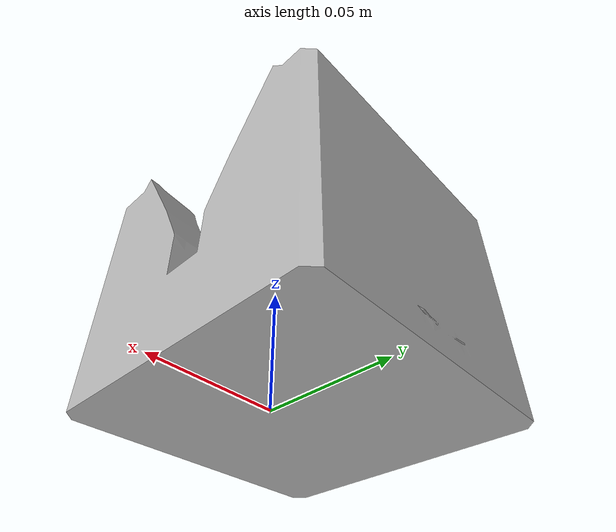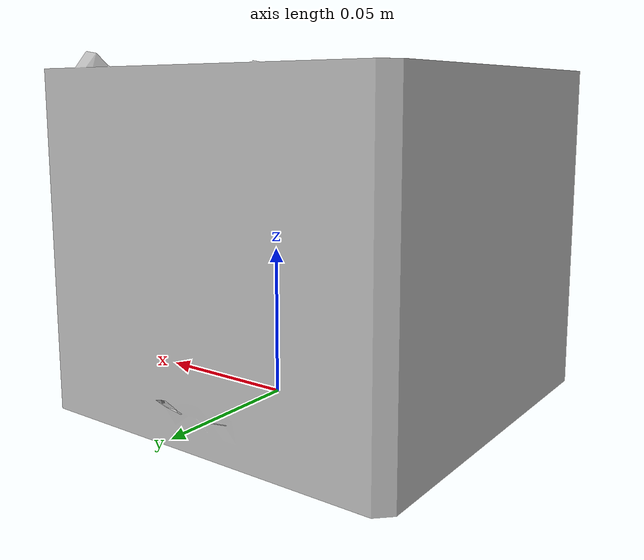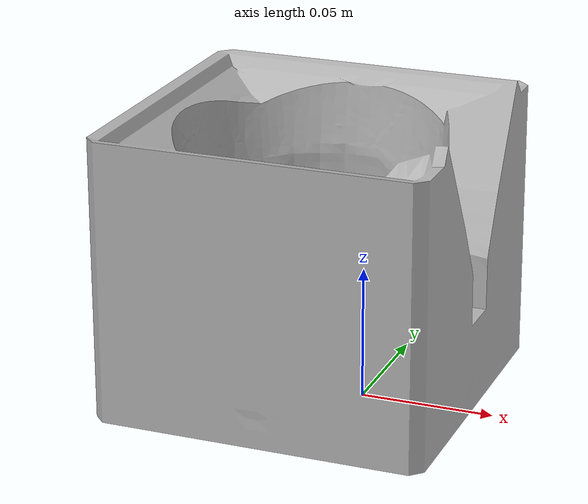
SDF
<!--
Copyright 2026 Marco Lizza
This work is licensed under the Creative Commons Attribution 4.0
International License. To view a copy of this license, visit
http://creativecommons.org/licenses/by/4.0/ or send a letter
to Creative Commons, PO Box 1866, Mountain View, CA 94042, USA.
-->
<?xml version="1.0" ?>
<sdf version="1.6">
  <model name="Base">
    <link name="link_0">
        <inertial>
        <mass>10000</mass> <inertia>
          <ixx>0.0005</ixx>
          <ixy>0</ixy>
          <ixz>0</ixz>
          <iyy>0.0005</iyy>
          <iyz>0</iyz>
          <izz>0.0005</izz>
        </inertia>
      </inertial>
      <visual name="visual">
        <geometry>
          <mesh>
            <uri>meshes/cup_case.obj</uri>
          </mesh>
        </geometry>
      </visual>
      <collision name="collision_0">
        <geometry>
          <mesh>
            <uri>meshes/cup_case.obj</uri>
          </mesh>
        </geometry>
      </collision>
    </link>
  </model>
</sdf>
